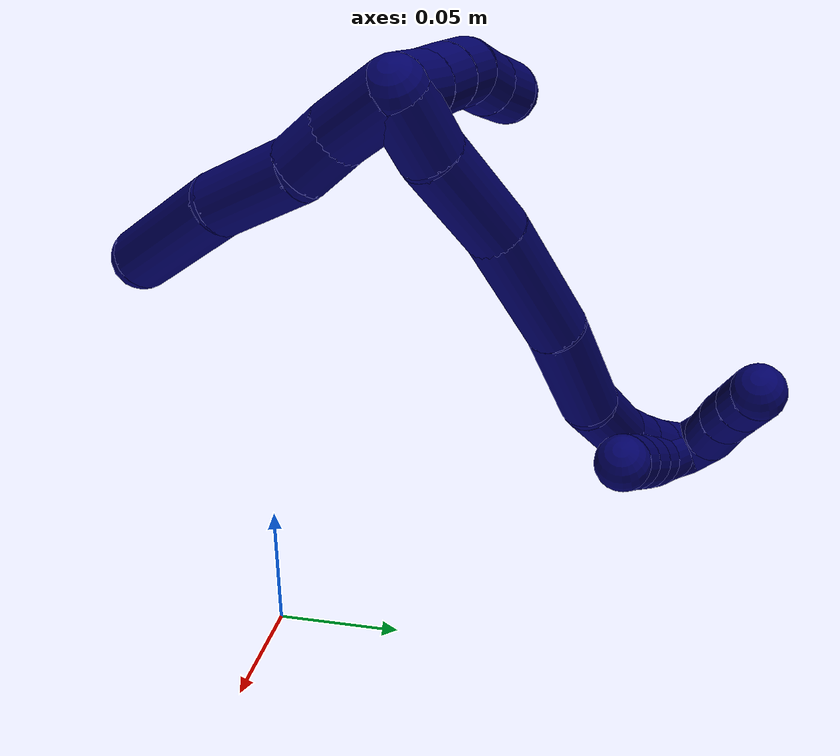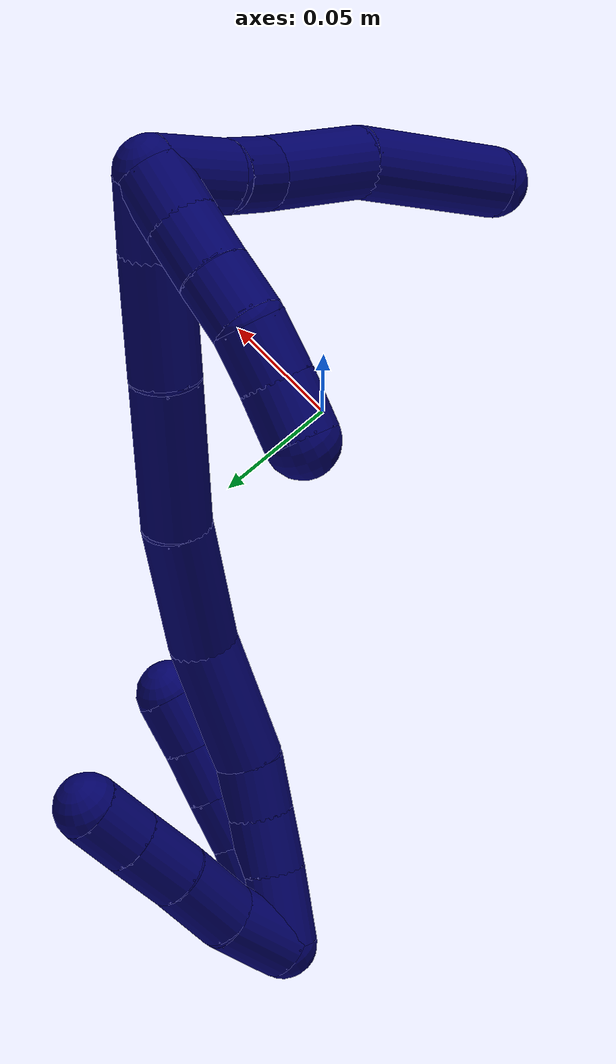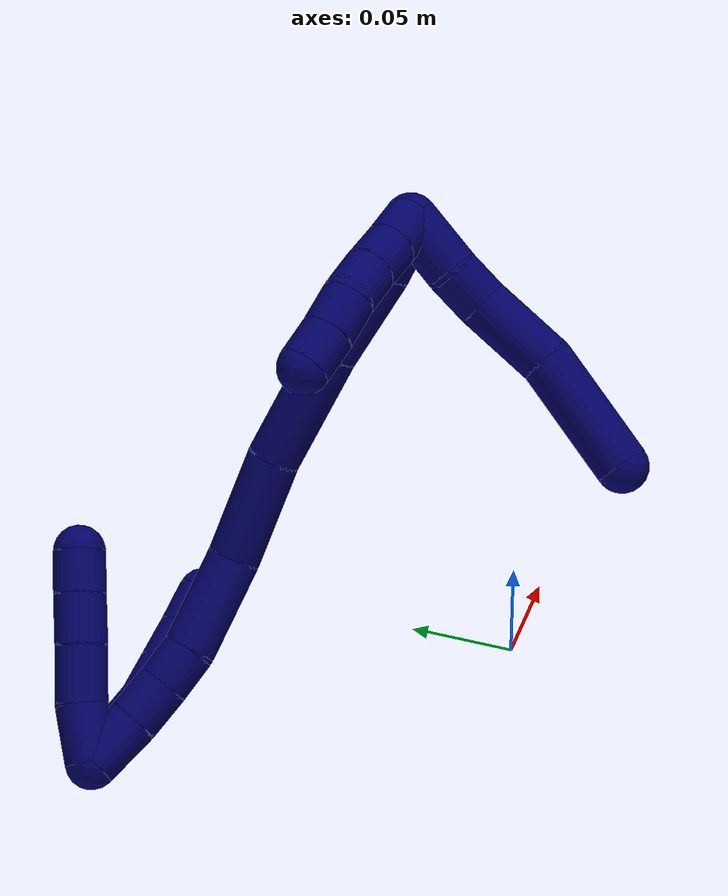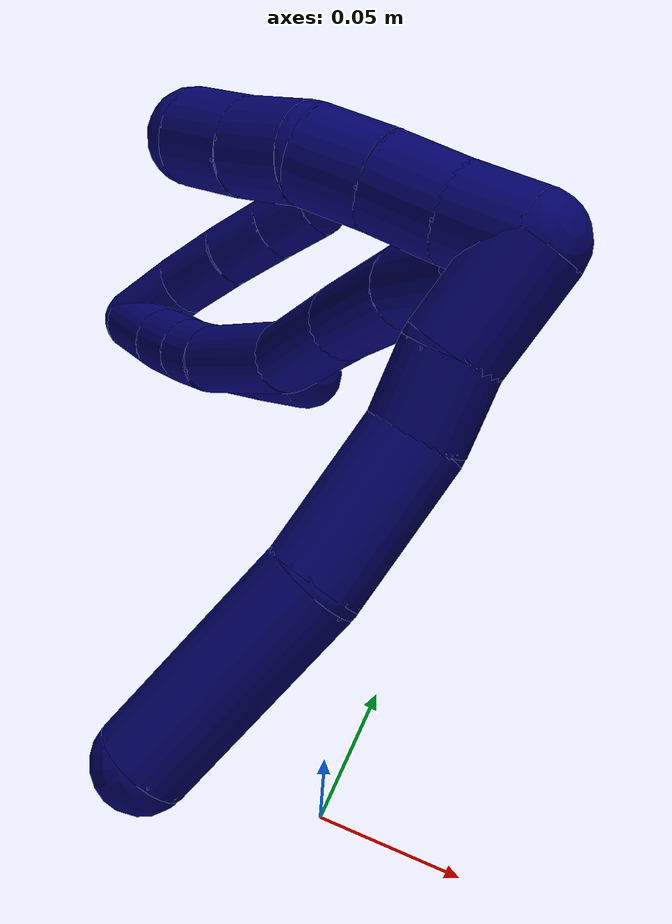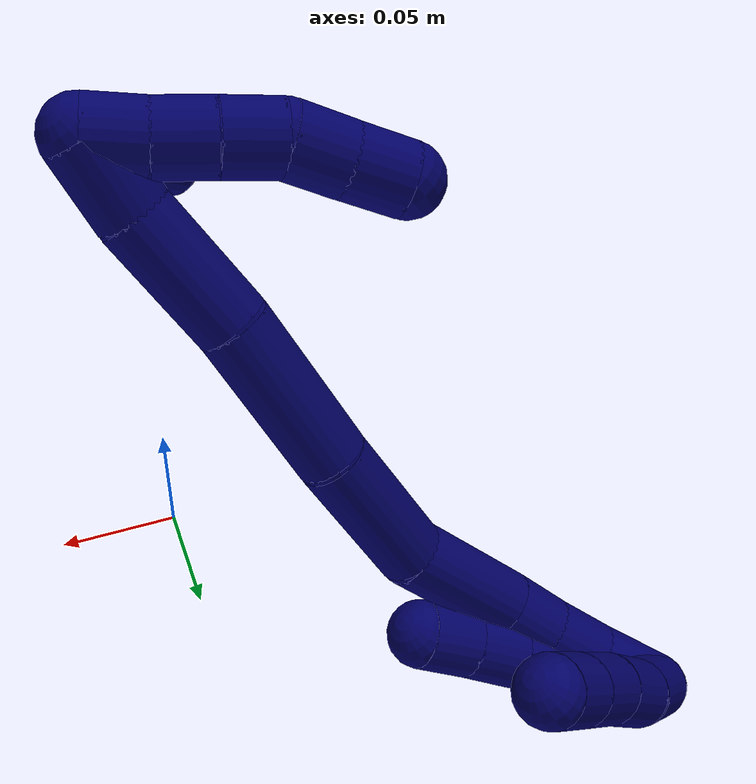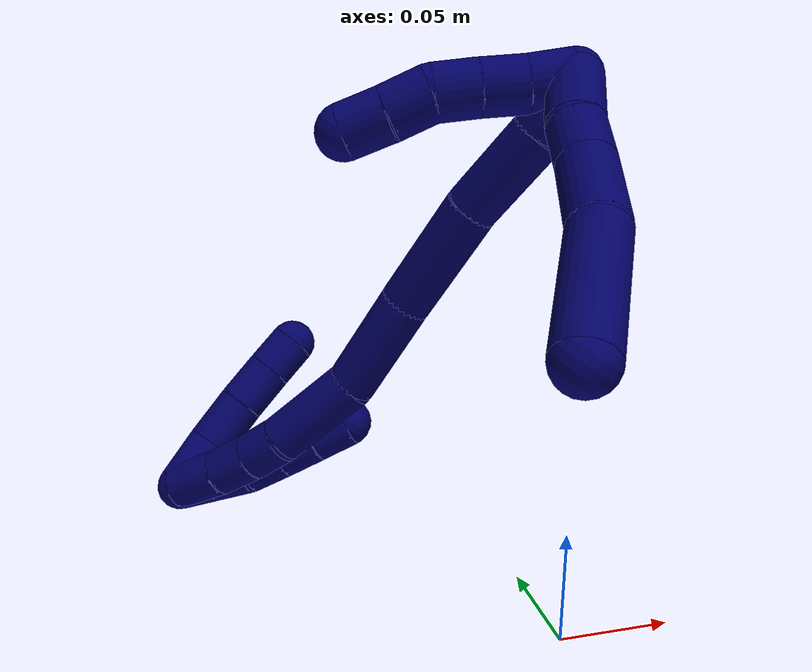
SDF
<sdf version="1.7">
 <world name="default">
  <model name="7">
   <static>0</static>
   <link name="7">
    <collision name="collision-cylinder-e_1_2_8">
     <pose>0.003595 -0.011137 -0.009468 2.27536 0.241184 0.512608</pose>
     <geometry><cylinder><radius>0.0125</radius><length>0.030106</length></cylinder></geometry>
     <surface>
      <friction><ode><mu>1.16</mu><mu2>1.16</mu2><slip1>0</slip1><slip2>0</slip2></ode></friction>
      <contact><ode><kp>1e+06</kp><kd>1</kd><max_vel>0</max_vel><min_depth>0.001</min_depth></ode></contact>
     </surface>
    </collision>
    <visual name="visual-cylinder-e_1_2_8">
     <pose>0.003595 -0.011137 -0.009468 2.27536 0.241184 0.512608</pose>
     <geometry><cylinder><radius>0.0125</radius><length>0.030106</length></cylinder></geometry>
     <material><ambient>0.003922 0 0.403922 1</ambient></material>
    </visual>
    <collision name="collision-cylinder-e_2_8_9">
     <pose>0.011805 -0.029249 -0.024823 2.27188 0.468044 0.948306</pose>
     <geometry><cylinder><radius>0.0125</radius><length>0.020456</length></cylinder></geometry>
     <surface>
      <friction><ode><mu>1.16</mu><mu2>1.16</mu2><slip1>0</slip1><slip2>0</slip2></ode></friction>
      <contact><ode><kp>1e+06</kp><kd>1</kd><max_vel>0</max_vel><min_depth>0.001</min_depth></ode></contact>
     </surface>
    </collision>
    <visual name="visual-cylinder-e_2_8_9">
     <pose>0.011805 -0.029249 -0.024823 2.27188 0.468044 0.948306</pose>
     <geometry><cylinder><radius>0.0125</radius><length>0.020456</length></cylinder></geometry>
     <material><ambient>0.003922 0 0.403922 1</ambient></material>
    </visual>
    <collision name="collision-cylinder-e_3_9_10">
     <pose>0.020928 -0.052975 -0.040621 2.10502 0.227632 0.395641</pose>
     <geometry><cylinder><radius>0.0125</radius><length>0.039957</length></cylinder></geometry>
     <surface>
      <friction><ode><mu>1.16</mu><mu2>1.16</mu2><slip1>0</slip1><slip2>0</slip2></ode></friction>
      <contact><ode><kp>1e+06</kp><kd>1</kd><max_vel>0</max_vel><min_depth>0.001</min_depth></ode></contact>
     </surface>
    </collision>
    <visual name="visual-cylinder-e_3_9_10">
     <pose>0.020928 -0.052975 -0.040621 2.10502 0.227632 0.395641</pose>
     <geometry><cylinder><radius>0.0125</radius><length>0.039957</length></cylinder></geometry>
     <material><ambient>0.003922 0 0.403922 1</ambient></material>
    </visual>
    <collision name="collision-cylinder-e_4_10_6">
     <pose>0.029332 -0.091696 -0.070195 2.30088 0.13135 0.292176</pose>
     <geometry><cylinder><radius>0.0125</radius><length>0.059481</length></cylinder></geometry>
     <surface>
      <friction><ode><mu>1.16</mu><mu2>1.16</mu2><slip1>0</slip1><slip2>0</slip2></ode></friction>
      <contact><ode><kp>1e+06</kp><kd>1</kd><max_vel>0</max_vel><min_depth>0.001</min_depth></ode></contact>
     </surface>
    </collision>
    <visual name="visual-cylinder-e_4_10_6">
     <pose>0.029332 -0.091696 -0.070195 2.30088 0.13135 0.292176</pose>
     <geometry><cylinder><radius>0.0125</radius><length>0.059481</length></cylinder></geometry>
     <material><ambient>0.003922 0 0.403922 1</ambient></material>
    </visual>
    <collision name="collision-cylinder-e_1_2_11">
     <pose>-0.007465 0.000268 -0.006648 -3.10129 -0.8428 3.05173</pose>
     <geometry><cylinder><radius>0.0125</radius><length>0.02</length></cylinder></geometry>
     <surface>
      <friction><ode><mu>1.16</mu><mu2>1.16</mu2><slip1>0</slip1><slip2>0</slip2></ode></friction>
      <contact><ode><kp>1e+06</kp><kd>1</kd><max_vel>0</max_vel><min_depth>0.001</min_depth></ode></contact>
     </surface>
    </collision>
    <visual name="visual-cylinder-e_1_2_11">
     <pose>-0.007465 0.000268 -0.006648 -3.10129 -0.8428 3.05173</pose>
     <geometry><cylinder><radius>0.0125</radius><length>0.02</length></cylinder></geometry>
     <material><ambient>0.003922 0 0.403922 1</ambient></material>
    </visual>
    <collision name="collision-cylinder-e_2_11_12">
     <pose>-0.022851 0.000683 -0.019399 -3.11758 -0.914271 3.09278</pose>
     <geometry><cylinder><radius>0.0125</radius><length>0.02</length></cylinder></geometry>
     <surface>
      <friction><ode><mu>1.16</mu><mu2>1.16</mu2><slip1>0</slip1><slip2>0</slip2></ode></friction>
      <contact><ode><kp>1e+06</kp><kd>1</kd><max_vel>0</max_vel><min_depth>0.001</min_depth></ode></contact>
     </surface>
    </collision>
    <visual name="visual-cylinder-e_2_11_12">
     <pose>-0.022851 0.000683 -0.019399 -3.11758 -0.914271 3.09278</pose>
     <geometry><cylinder><radius>0.0125</radius><length>0.02</length></cylinder></geometry>
     <material><ambient>0.003922 0 0.403922 1</ambient></material>
    </visual>
    <collision name="collision-cylinder-e_3_12_13">
     <pose>-0.038457 0.000727 -0.031899 3.12563 -0.876344 -3.10753</pose>
     <geometry><cylinder><radius>0.0125</radius><length>0.02</length></cylinder></geometry>
     <surface>
      <friction><ode><mu>1.16</mu><mu2>1.16</mu2><slip1>0</slip1><slip2>0</slip2></ode></friction>
      <contact><ode><kp>1e+06</kp><kd>1</kd><max_vel>0</max_vel><min_depth>0.001</min_depth></ode></contact>
     </surface>
    </collision>
    <visual name="visual-cylinder-e_3_12_13">
     <pose>-0.038457 0.000727 -0.031899 3.12563 -0.876344 -3.10753</pose>
     <geometry><cylinder><radius>0.0125</radius><length>0.02</length></cylinder></geometry>
     <material><ambient>0.003922 0 0.403922 1</ambient></material>
    </visual>
    <collision name="collision-cylinder-e_4_13_14">
     <pose>-0.051441 0.001381 -0.046744 -3.05233 -0.558648 2.83265</pose>
     <geometry><cylinder><radius>0.0125</radius><length>0.02</length></cylinder></geometry>
     <surface>
      <friction><ode><mu>1.16</mu><mu2>1.16</mu2><slip1>0</slip1><slip2>0</slip2></ode></friction>
      <contact><ode><kp>1e+06</kp><kd>1</kd><max_vel>0</max_vel><min_depth>0.001</min_depth></ode></contact>
     </surface>
    </collision>
    <visual name="visual-cylinder-e_4_13_14">
     <pose>-0.051441 0.001381 -0.046744 -3.05233 -0.558648 2.83265</pose>
     <geometry><cylinder><radius>0.0125</radius><length>0.02</length></cylinder></geometry>
     <material><ambient>0.003922 0 0.403922 1</ambient></material>
    </visual>
    <collision name="collision-cylinder-e_5_14_5">
     <pose>-0.062424 0.00341 -0.063319 -2.9862 -0.604398 2.65213</pose>
     <geometry><cylinder><radius>0.0125</radius><length>0.02</length></cylinder></geometry>
     <surface>
      <friction><ode><mu>1.16</mu><mu2>1.16</mu2><slip1>0</slip1><slip2>0</slip2></ode></friction>
      <contact><ode><kp>1e+06</kp><kd>1</kd><max_vel>0</max_vel><min_depth>0.001</min_depth></ode></contact>
     </surface>
    </collision>
    <visual name="visual-cylinder-e_5_14_5">
     <pose>-0.062424 0.00341 -0.063319 -2.9862 -0.604398 2.65213</pose>
     <geometry><cylinder><radius>0.0125</radius><length>0.02</length></cylinder></geometry>
     <material><ambient>0.003922 0 0.403922 1</ambient></material>
    </visual>
    <collision name="collision-cylinder-e_1_2_15">
     <pose>0.001085 0.004542 -0.013004 -2.80557 0.078625 -0.455746</pose>
     <geometry><cylinder><radius>0.0125</radius><length>0.027634</length></cylinder></geometry>
     <surface>
      <friction><ode><mu>1.16</mu><mu2>1.16</mu2><slip1>0</slip1><slip2>0</slip2></ode></friction>
      <contact><ode><kp>1e+06</kp><kd>1</kd><max_vel>0</max_vel><min_depth>0.001</min_depth></ode></contact>
     </surface>
    </collision>
    <visual name="visual-cylinder-e_1_2_15">
     <pose>0.001085 0.004542 -0.013004 -2.80557 0.078625 -0.455746</pose>
     <geometry><cylinder><radius>0.0125</radius><length>0.027634</length></cylinder></geometry>
     <material><ambient>0.003922 0 0.403922 1</ambient></material>
    </visual>
    <collision name="collision-cylinder-e_2_15_16">
     <pose>0.000324 0.01733 -0.047003 -2.76734 -0.081666 0.425039</pose>
     <geometry><cylinder><radius>0.0125</radius><length>0.045263</length></cylinder></geometry>
     <surface>
      <friction><ode><mu>1.16</mu><mu2>1.16</mu2><slip1>0</slip1><slip2>0</slip2></ode></friction>
      <contact><ode><kp>1e+06</kp><kd>1</kd><max_vel>0</max_vel><min_depth>0.001</min_depth></ode></contact>
     </surface>
    </collision>
    <visual name="visual-cylinder-e_2_15_16">
     <pose>0.000324 0.01733 -0.047003 -2.76734 -0.081666 0.425039</pose>
     <geometry><cylinder><radius>0.0125</radius><length>0.045263</length></cylinder></geometry>
     <material><ambient>0.003922 0 0.403922 1</ambient></material>
    </visual>
    <collision name="collision-cylinder-e_3_16_17">
     <pose>-0.000666 0.03509 -0.095145 -2.80451 0.029743 -0.174367</pose>
     <geometry><cylinder><radius>0.0125</radius><length>0.057558</length></cylinder></geometry>
     <surface>
      <friction><ode><mu>1.16</mu><mu2>1.16</mu2><slip1>0</slip1><slip2>0</slip2></ode></friction>
      <contact><ode><kp>1e+06</kp><kd>1</kd><max_vel>0</max_vel><min_depth>0.001</min_depth></ode></contact>
     </surface>
    </collision>
    <visual name="visual-cylinder-e_3_16_17">
     <pose>-0.000666 0.03509 -0.095145 -2.80451 0.029743 -0.174367</pose>
     <geometry><cylinder><radius>0.0125</radius><length>0.057558</length></cylinder></geometry>
     <material><ambient>0.003922 0 0.403922 1</ambient></material>
    </visual>
    <collision name="collision-cylinder-e_4_17_18">
     <pose>0.000968 0.050078 -0.147643 -2.92893 0.029986 -0.279138</pose>
     <geometry><cylinder><radius>0.0125</radius><length>0.051893</length></cylinder></geometry>
     <surface>
      <friction><ode><mu>1.16</mu><mu2>1.16</mu2><slip1>0</slip1><slip2>0</slip2></ode></friction>
      <contact><ode><kp>1e+06</kp><kd>1</kd><max_vel>0</max_vel><min_depth>0.001</min_depth></ode></contact>
     </surface>
    </collision>
    <visual name="visual-cylinder-e_4_17_18">
     <pose>0.000968 0.050078 -0.147643 -2.92893 0.029986 -0.279138</pose>
     <geometry><cylinder><radius>0.0125</radius><length>0.051893</length></cylinder></geometry>
     <material><ambient>0.003922 0 0.403922 1</ambient></material>
    </visual>
    <collision name="collision-cylinder-e_5_18_19">
     <pose>-0.004941 0.05889 -0.195686 -2.99552 -0.283655 2.19454</pose>
     <geometry><cylinder><radius>0.0125</radius><length>0.047782</length></cylinder></geometry>
     <surface>
      <friction><ode><mu>1.16</mu><mu2>1.16</mu2><slip1>0</slip1><slip2>0</slip2></ode></friction>
      <contact><ode><kp>1e+06</kp><kd>1</kd><max_vel>0</max_vel><min_depth>0.001</min_depth></ode></contact>
     </surface>
    </collision>
    <visual name="visual-cylinder-e_5_18_19">
     <pose>-0.004941 0.05889 -0.195686 -2.99552 -0.283655 2.19454</pose>
     <geometry><cylinder><radius>0.0125</radius><length>0.047782</length></cylinder></geometry>
     <material><ambient>0.003922 0 0.403922 1</ambient></material>
    </visual>
    <collision name="collision-cylinder-e_6_19_20">
     <pose>-0.015075 0.065376 -0.227371 -2.80492 -0.347211 1.60223</pose>
     <geometry><cylinder><radius>0.0125</radius><length>0.020265</length></cylinder></geometry>
     <surface>
      <friction><ode><mu>1.16</mu><mu2>1.16</mu2><slip1>0</slip1><slip2>0</slip2></ode></friction>
      <contact><ode><kp>1e+06</kp><kd>1</kd><max_vel>0</max_vel><min_depth>0.001</min_depth></ode></contact>
     </surface>
    </collision>
    <visual name="visual-cylinder-e_6_19_20">
     <pose>-0.015075 0.065376 -0.227371 -2.80492 -0.347211 1.60223</pose>
     <geometry><cylinder><radius>0.0125</radius><length>0.020265</length></cylinder></geometry>
     <material><ambient>0.003922 0 0.403922 1</ambient></material>
    </visual>
    <collision name="collision-cylinder-e_7_20_21">
     <pose>-0.022956 0.07205 -0.245805 -2.78409 -0.414398 1.72164</pose>
     <geometry><cylinder><radius>0.0125</radius><length>0.022021</length></cylinder></geometry>
     <surface>
      <friction><ode><mu>1.16</mu><mu2>1.16</mu2><slip1>0</slip1><slip2>0</slip2></ode></friction>
      <contact><ode><kp>1e+06</kp><kd>1</kd><max_vel>0</max_vel><min_depth>0.001</min_depth></ode></contact>
     </surface>
    </collision>
    <visual name="visual-cylinder-e_7_20_21">
     <pose>-0.022956 0.07205 -0.245805 -2.78409 -0.414398 1.72164</pose>
     <geometry><cylinder><radius>0.0125</radius><length>0.022021</length></cylinder></geometry>
     <material><ambient>0.003922 0 0.403922 1</ambient></material>
    </visual>
    <collision name="collision-cylinder-e_8_21_1">
     <pose>-0.033899 0.080605 -0.266317 -2.71525 -0.491566 1.71773</pose>
     <geometry><cylinder><radius>0.0125</radius><length>0.027584</length></cylinder></geometry>
     <surface>
      <friction><ode><mu>1.16</mu><mu2>1.16</mu2><slip1>0</slip1><slip2>0</slip2></ode></friction>
      <contact><ode><kp>1e+06</kp><kd>1</kd><max_vel>0</max_vel><min_depth>0.001</min_depth></ode></contact>
     </surface>
    </collision>
    <visual name="visual-cylinder-e_8_21_1">
     <pose>-0.033899 0.080605 -0.266317 -2.71525 -0.491566 1.71773</pose>
     <geometry><cylinder><radius>0.0125</radius><length>0.027584</length></cylinder></geometry>
     <material><ambient>0.003922 0 0.403922 1</ambient></material>
    </visual>
    <collision name="collision-cylinder-e_1_1_22">
     <pose>-0.03948 0.091831 -0.264853 -0.459202 0.066302 -0.015502</pose>
     <geometry><cylinder><radius>0.0125</radius><length>0.028027</length></cylinder></geometry>
     <surface>
      <friction><ode><mu>1.16</mu><mu2>1.16</mu2><slip1>0</slip1><slip2>0</slip2></ode></friction>
      <contact><ode><kp>1e+06</kp><kd>1</kd><max_vel>0</max_vel><min_depth>0.001</min_depth></ode></contact>
     </surface>
    </collision>
    <visual name="visual-cylinder-e_1_1_22">
     <pose>-0.03948 0.091831 -0.264853 -0.459202 0.066302 -0.015502</pose>
     <geometry><cylinder><radius>0.0125</radius><length>0.028027</length></cylinder></geometry>
     <material><ambient>0.003922 0 0.403922 1</ambient></material>
    </visual>
    <collision name="collision-cylinder-e_2_22_23">
     <pose>-0.037208 0.101836 -0.239243 -0.283377 0.098394 -0.014046</pose>
     <geometry><cylinder><radius>0.0125</radius><length>0.027371</length></cylinder></geometry>
     <surface>
      <friction><ode><mu>1.16</mu><mu2>1.16</mu2><slip1>0</slip1><slip2>0</slip2></ode></friction>
      <contact><ode><kp>1e+06</kp><kd>1</kd><max_vel>0</max_vel><min_depth>0.001</min_depth></ode></contact>
     </surface>
    </collision>
    <visual name="visual-cylinder-e_2_22_23">
     <pose>-0.037208 0.101836 -0.239243 -0.283377 0.098394 -0.014046</pose>
     <geometry><cylinder><radius>0.0125</radius><length>0.027371</length></cylinder></geometry>
     <material><ambient>0.003922 0 0.403922 1</ambient></material>
    </visual>
    <collision name="collision-cylinder-e_3_23_24">
     <pose>-0.034135 0.109611 -0.214949 -0.33989 0.144216 -0.024789</pose>
     <geometry><cylinder><radius>0.0125</radius><length>0.024047</length></cylinder></geometry>
     <surface>
      <friction><ode><mu>1.16</mu><mu2>1.16</mu2><slip1>0</slip1><slip2>0</slip2></ode></friction>
      <contact><ode><kp>1e+06</kp><kd>1</kd><max_vel>0</max_vel><min_depth>0.001</min_depth></ode></contact>
     </surface>
    </collision>
    <visual name="visual-cylinder-e_3_23_24">
     <pose>-0.034135 0.109611 -0.214949 -0.33989 0.144216 -0.024789</pose>
     <geometry><cylinder><radius>0.0125</radius><length>0.024047</length></cylinder></geometry>
     <material><ambient>0.003922 0 0.403922 1</ambient></material>
    </visual>
    <collision name="collision-cylinder-e_4_24_4">
     <pose>-0.030773 0.116881 -0.194137 -0.331577 0.159679 -0.026773</pose>
     <geometry><cylinder><radius>0.0125</radius><length>0.020555</length></cylinder></geometry>
     <surface>
      <friction><ode><mu>1.16</mu><mu2>1.16</mu2><slip1>0</slip1><slip2>0</slip2></ode></friction>
      <contact><ode><kp>1e+06</kp><kd>1</kd><max_vel>0</max_vel><min_depth>0.001</min_depth></ode></contact>
     </surface>
    </collision>
    <visual name="visual-cylinder-e_4_24_4">
     <pose>-0.030773 0.116881 -0.194137 -0.331577 0.159679 -0.026773</pose>
     <geometry><cylinder><radius>0.0125</radius><length>0.020555</length></cylinder></geometry>
     <material><ambient>0.003922 0 0.403922 1</ambient></material>
    </visual>
    <collision name="collision-cylinder-e_1_1_25">
     <pose>-0.034285 0.083345 -0.26982 0.293579 0.659046 0.101043</pose>
     <geometry><cylinder><radius>0.0125</radius><length>0.02</length></cylinder></geometry>
     <surface>
      <friction><ode><mu>1.16</mu><mu2>1.16</mu2><slip1>0</slip1><slip2>0</slip2></ode></friction>
      <contact><ode><kp>1e+06</kp><kd>1</kd><max_vel>0</max_vel><min_depth>0.001</min_depth></ode></contact>
     </surface>
    </collision>
    <visual name="visual-cylinder-e_1_1_25">
     <pose>-0.034285 0.083345 -0.26982 0.293579 0.659046 0.101043</pose>
     <geometry><cylinder><radius>0.0125</radius><length>0.02</length></cylinder></geometry>
     <material><ambient>0.003922 0 0.403922 1</ambient></material>
    </visual>
    <collision name="collision-cylinder-e_2_25_26">
     <pose>-0.021811 0.079271 -0.254737 0.233429 0.688054 0.083964</pose>
     <geometry><cylinder><radius>0.0125</radius><length>0.02</length></cylinder></geometry>
     <surface>
      <friction><ode><mu>1.16</mu><mu2>1.16</mu2><slip1>0</slip1><slip2>0</slip2></ode></friction>
      <contact><ode><kp>1e+06</kp><kd>1</kd><max_vel>0</max_vel><min_depth>0.001</min_depth></ode></contact>
     </surface>
    </collision>
    <visual name="visual-cylinder-e_2_25_26">
     <pose>-0.021811 0.079271 -0.254737 0.233429 0.688054 0.083964</pose>
     <geometry><cylinder><radius>0.0125</radius><length>0.02</length></cylinder></geometry>
     <material><ambient>0.003922 0 0.403922 1</ambient></material>
    </visual>
    <collision name="collision-cylinder-e_3_26_27">
     <pose>-0.010352 0.076803 -0.238652 0.079284 0.53626 0.021793</pose>
     <geometry><cylinder><radius>0.0125</radius><length>0.02</length></cylinder></geometry>
     <surface>
      <friction><ode><mu>1.16</mu><mu2>1.16</mu2><slip1>0</slip1><slip2>0</slip2></ode></friction>
      <contact><ode><kp>1e+06</kp><kd>1</kd><max_vel>0</max_vel><min_depth>0.001</min_depth></ode></contact>
     </surface>
    </collision>
    <visual name="visual-cylinder-e_3_26_27">
     <pose>-0.010352 0.076803 -0.238652 0.079284 0.53626 0.021793</pose>
     <geometry><cylinder><radius>0.0125</radius><length>0.02</length></cylinder></geometry>
     <material><ambient>0.003922 0 0.403922 1</ambient></material>
    </visual>
    <collision name="collision-cylinder-e_4_27_28">
     <pose>-0.000354 0.075313 -0.221397 0.092849 0.510706 0.024255</pose>
     <geometry><cylinder><radius>0.0125</radius><length>0.02</length></cylinder></geometry>
     <surface>
      <friction><ode><mu>1.16</mu><mu2>1.16</mu2><slip1>0</slip1><slip2>0</slip2></ode></friction>
      <contact><ode><kp>1e+06</kp><kd>1</kd><max_vel>0</max_vel><min_depth>0.001</min_depth></ode></contact>
     </surface>
    </collision>
    <visual name="visual-cylinder-e_4_27_28">
     <pose>-0.000354 0.075313 -0.221397 0.092849 0.510706 0.024255</pose>
     <geometry><cylinder><radius>0.0125</radius><length>0.02</length></cylinder></geometry>
     <material><ambient>0.003922 0 0.403922 1</ambient></material>
    </visual>
    <collision name="collision-cylinder-e_5_28_3">
     <pose>0.00946 0.074096 -0.204018 0.046966 0.51514 0.012374</pose>
     <geometry><cylinder><radius>0.0125</radius><length>0.02</length></cylinder></geometry>
     <surface>
      <friction><ode><mu>1.16</mu><mu2>1.16</mu2><slip1>0</slip1><slip2>0</slip2></ode></friction>
      <contact><ode><kp>1e+06</kp><kd>1</kd><max_vel>0</max_vel><min_depth>0.001</min_depth></ode></contact>
     </surface>
    </collision>
    <visual name="visual-cylinder-e_5_28_3">
     <pose>0.00946 0.074096 -0.204018 0.046966 0.51514 0.012374</pose>
     <geometry><cylinder><radius>0.0125</radius><length>0.02</length></cylinder></geometry>
     <material><ambient>0.003922 0 0.403922 1</ambient></material>
    </visual>
    <collision name="collision-sphere-3">
     <pose>0.014387 0.073687 -0.195325 0 -0 0</pose>
     <geometry><sphere><radius>0.0125</radius></sphere></geometry>
     <surface>
      <friction><ode><mu>1.16</mu><mu2>1.16</mu2><slip1>0</slip1><slip2>0</slip2></ode></friction>
      <contact><ode><kp>1e+06</kp><kd>1</kd><max_vel>0</max_vel><min_depth>0.001</min_depth></ode></contact>
     </surface>
    </collision>
    <visual name="visual-sphere-3">
     <pose>0.014387 0.073687 -0.195325 0 -0 0</pose>
     <geometry><sphere><radius>0.0125</radius></sphere></geometry>
     <material><ambient>0.003922 0 0.403922 1</ambient></material>
    </visual>
    <collision name="collision-sphere-28">
     <pose>0.004533 0.074505 -0.21271 0 -0 0</pose>
     <geometry><sphere><radius>0.0125</radius></sphere></geometry>
     <surface>
      <friction><ode><mu>1.16</mu><mu2>1.16</mu2><slip1>0</slip1><slip2>0</slip2></ode></friction>
      <contact><ode><kp>1e+06</kp><kd>1</kd><max_vel>0</max_vel><min_depth>0.001</min_depth></ode></contact>
     </surface>
    </collision>
    <visual name="visual-sphere-28">
     <pose>0.004533 0.074505 -0.21271 0 -0 0</pose>
     <geometry><sphere><radius>0.0125</radius></sphere></geometry>
     <material><ambient>0.003922 0 0.403922 1</ambient></material>
    </visual>
    <collision name="collision-sphere-27">
     <pose>-0.005242 0.076122 -0.230083 0 -0 0</pose>
     <geometry><sphere><radius>0.0125</radius></sphere></geometry>
     <surface>
      <friction><ode><mu>1.16</mu><mu2>1.16</mu2><slip1>0</slip1><slip2>0</slip2></ode></friction>
      <contact><ode><kp>1e+06</kp><kd>1</kd><max_vel>0</max_vel><min_depth>0.001</min_depth></ode></contact>
     </surface>
    </collision>
    <visual name="visual-sphere-27">
     <pose>-0.005242 0.076122 -0.230083 0 -0 0</pose>
     <geometry><sphere><radius>0.0125</radius></sphere></geometry>
     <material><ambient>0.003922 0 0.403922 1</ambient></material>
    </visual>
    <collision name="collision-sphere-26">
     <pose>-0.015461 0.077484 -0.247222 0 -0 0</pose>
     <geometry><sphere><radius>0.0125</radius></sphere></geometry>
     <surface>
      <friction><ode><mu>1.16</mu><mu2>1.16</mu2><slip1>0</slip1><slip2>0</slip2></ode></friction>
      <contact><ode><kp>1e+06</kp><kd>1</kd><max_vel>0</max_vel><min_depth>0.001</min_depth></ode></contact>
     </surface>
    </collision>
    <visual name="visual-sphere-26">
     <pose>-0.015461 0.077484 -0.247222 0 -0 0</pose>
     <geometry><sphere><radius>0.0125</radius></sphere></geometry>
     <material><ambient>0.003922 0 0.403922 1</ambient></material>
    </visual>
    <collision name="collision-sphere-25">
     <pose>-0.028162 0.081058 -0.262252 0 -0 0</pose>
     <geometry><sphere><radius>0.0125</radius></sphere></geometry>
     <surface>
      <friction><ode><mu>1.16</mu><mu2>1.16</mu2><slip1>0</slip1><slip2>0</slip2></ode></friction>
      <contact><ode><kp>1e+06</kp><kd>1</kd><max_vel>0</max_vel><min_depth>0.001</min_depth></ode></contact>
     </surface>
    </collision>
    <visual name="visual-sphere-25">
     <pose>-0.028162 0.081058 -0.262252 0 -0 0</pose>
     <geometry><sphere><radius>0.0125</radius></sphere></geometry>
     <material><ambient>0.003922 0 0.403922 1</ambient></material>
    </visual>
    <collision name="collision-sphere-4">
     <pose>-0.029139 0.120184 -0.184543 0 -0 0</pose>
     <geometry><sphere><radius>0.0125</radius></sphere></geometry>
     <surface>
      <friction><ode><mu>1.16</mu><mu2>1.16</mu2><slip1>0</slip1><slip2>0</slip2></ode></friction>
      <contact><ode><kp>1e+06</kp><kd>1</kd><max_vel>0</max_vel><min_depth>0.001</min_depth></ode></contact>
     </surface>
    </collision>
    <visual name="visual-sphere-4">
     <pose>-0.029139 0.120184 -0.184543 0 -0 0</pose>
     <geometry><sphere><radius>0.0125</radius></sphere></geometry>
     <material><ambient>0.003922 0 0.403922 1</ambient></material>
    </visual>
    <collision name="collision-sphere-24">
     <pose>-0.032407 0.113578 -0.203731 0 -0 0</pose>
     <geometry><sphere><radius>0.0125</radius></sphere></geometry>
     <surface>
      <friction><ode><mu>1.16</mu><mu2>1.16</mu2><slip1>0</slip1><slip2>0</slip2></ode></friction>
      <contact><ode><kp>1e+06</kp><kd>1</kd><max_vel>0</max_vel><min_depth>0.001</min_depth></ode></contact>
     </surface>
    </collision>
    <visual name="visual-sphere-24">
     <pose>-0.032407 0.113578 -0.203731 0 -0 0</pose>
     <geometry><sphere><radius>0.0125</radius></sphere></geometry>
     <material><ambient>0.003922 0 0.403922 1</ambient></material>
    </visual>
    <collision name="collision-sphere-23">
     <pose>-0.035863 0.105644 -0.226167 0 -0 0</pose>
     <geometry><sphere><radius>0.0125</radius></sphere></geometry>
     <surface>
      <friction><ode><mu>1.16</mu><mu2>1.16</mu2><slip1>0</slip1><slip2>0</slip2></ode></friction>
      <contact><ode><kp>1e+06</kp><kd>1</kd><max_vel>0</max_vel><min_depth>0.001</min_depth></ode></contact>
     </surface>
    </collision>
    <visual name="visual-sphere-23">
     <pose>-0.035863 0.105644 -0.226167 0 -0 0</pose>
     <geometry><sphere><radius>0.0125</radius></sphere></geometry>
     <material><ambient>0.003922 0 0.403922 1</ambient></material>
    </visual>
    <collision name="collision-sphere-22">
     <pose>-0.038552 0.098028 -0.252319 0 -0 0</pose>
     <geometry><sphere><radius>0.0125</radius></sphere></geometry>
     <surface>
      <friction><ode><mu>1.16</mu><mu2>1.16</mu2><slip1>0</slip1><slip2>0</slip2></ode></friction>
      <contact><ode><kp>1e+06</kp><kd>1</kd><max_vel>0</max_vel><min_depth>0.001</min_depth></ode></contact>
     </surface>
    </collision>
    <visual name="visual-sphere-22">
     <pose>-0.038552 0.098028 -0.252319 0 -0 0</pose>
     <geometry><sphere><radius>0.0125</radius></sphere></geometry>
     <material><ambient>0.003922 0 0.403922 1</ambient></material>
    </visual>
    <collision name="collision-sphere-1">
     <pose>-0.040409 0.085633 -0.277387 0 -0 0</pose>
     <geometry><sphere><radius>0.0125</radius></sphere></geometry>
     <surface>
      <friction><ode><mu>1.16</mu><mu2>1.16</mu2><slip1>0</slip1><slip2>0</slip2></ode></friction>
      <contact><ode><kp>1e+06</kp><kd>1</kd><max_vel>0</max_vel><min_depth>0.001</min_depth></ode></contact>
     </surface>
    </collision>
    <visual name="visual-sphere-1">
     <pose>-0.040409 0.085633 -0.277387 0 -0 0</pose>
     <geometry><sphere><radius>0.0125</radius></sphere></geometry>
     <material><ambient>0.003922 0 0.403922 1</ambient></material>
    </visual>
    <collision name="collision-sphere-21">
     <pose>-0.027389 0.075577 -0.255246 0 -0 0</pose>
     <geometry><sphere><radius>0.0125</radius></sphere></geometry>
     <surface>
      <friction><ode><mu>1.16</mu><mu2>1.16</mu2><slip1>0</slip1><slip2>0</slip2></ode></friction>
      <contact><ode><kp>1e+06</kp><kd>1</kd><max_vel>0</max_vel><min_depth>0.001</min_depth></ode></contact>
     </surface>
    </collision>
    <visual name="visual-sphere-21">
     <pose>-0.027389 0.075577 -0.255246 0 -0 0</pose>
     <geometry><sphere><radius>0.0125</radius></sphere></geometry>
     <material><ambient>0.003922 0 0.403922 1</ambient></material>
    </visual>
    <collision name="collision-sphere-11">
     <pose>-0.01493 0.000536 -0.013297 0 -0 0</pose>
     <geometry><sphere><radius>0.0125</radius></sphere></geometry>
     <surface>
      <friction><ode><mu>1.16</mu><mu2>1.16</mu2><slip1>0</slip1><slip2>0</slip2></ode></friction>
      <contact><ode><kp>1e+06</kp><kd>1</kd><max_vel>0</max_vel><min_depth>0.001</min_depth></ode></contact>
     </surface>
    </collision>
    <visual name="visual-sphere-11">
     <pose>-0.01493 0.000536 -0.013297 0 -0 0</pose>
     <geometry><sphere><radius>0.0125</radius></sphere></geometry>
     <material><ambient>0.003922 0 0.403922 1</ambient></material>
    </visual>
    <collision name="collision-sphere-6">
     <pose>0.033227 -0.113665 -0.089859 0 -0 0</pose>
     <geometry><sphere><radius>0.0125</radius></sphere></geometry>
     <surface>
      <friction><ode><mu>1.16</mu><mu2>1.16</mu2><slip1>0</slip1><slip2>0</slip2></ode></friction>
      <contact><ode><kp>1e+06</kp><kd>1</kd><max_vel>0</max_vel><min_depth>0.001</min_depth></ode></contact>
     </surface>
    </collision>
    <visual name="visual-sphere-6">
     <pose>0.033227 -0.113665 -0.089859 0 -0 0</pose>
     <geometry><sphere><radius>0.0125</radius></sphere></geometry>
     <material><ambient>0.003922 0 0.403922 1</ambient></material>
    </visual>
    <collision name="collision-sphere-10">
     <pose>0.025436 -0.069726 -0.050531 0 -0 0</pose>
     <geometry><sphere><radius>0.0125</radius></sphere></geometry>
     <surface>
      <friction><ode><mu>1.16</mu><mu2>1.16</mu2><slip1>0</slip1><slip2>0</slip2></ode></friction>
      <contact><ode><kp>1e+06</kp><kd>1</kd><max_vel>0</max_vel><min_depth>0.001</min_depth></ode></contact>
     </surface>
    </collision>
    <visual name="visual-sphere-10">
     <pose>0.025436 -0.069726 -0.050531 0 -0 0</pose>
     <geometry><sphere><radius>0.0125</radius></sphere></geometry>
     <material><ambient>0.003922 0 0.403922 1</ambient></material>
    </visual>
    <collision name="collision-sphere-9">
     <pose>0.016419 -0.036224 -0.030711 0 -0 0</pose>
     <geometry><sphere><radius>0.0125</radius></sphere></geometry>
     <surface>
      <friction><ode><mu>1.16</mu><mu2>1.16</mu2><slip1>0</slip1><slip2>0</slip2></ode></friction>
      <contact><ode><kp>1e+06</kp><kd>1</kd><max_vel>0</max_vel><min_depth>0.001</min_depth></ode></contact>
     </surface>
    </collision>
    <visual name="visual-sphere-9">
     <pose>0.016419 -0.036224 -0.030711 0 -0 0</pose>
     <geometry><sphere><radius>0.0125</radius></sphere></geometry>
     <material><ambient>0.003922 0 0.403922 1</ambient></material>
    </visual>
    <collision name="collision-sphere-2">
     <geometry><sphere><radius>0.0125</radius></sphere></geometry>
     <surface>
      <friction><ode><mu>1.16</mu><mu2>1.16</mu2><slip1>0</slip1><slip2>0</slip2></ode></friction>
      <contact><ode><kp>1e+06</kp><kd>1</kd><max_vel>0</max_vel><min_depth>0.001</min_depth></ode></contact>
     </surface>
    </collision>
    <visual name="visual-sphere-2">
     <geometry><sphere><radius>0.0125</radius></sphere></geometry>
     <material><ambient>0.003922 0 0.403922 1</ambient></material>
    </visual>
    <collision name="collision-sphere-19">
     <pose>-0.011627 0.062228 -0.218378 0 -0 0</pose>
     <geometry><sphere><radius>0.0125</radius></sphere></geometry>
     <surface>
      <friction><ode><mu>1.16</mu><mu2>1.16</mu2><slip1>0</slip1><slip2>0</slip2></ode></friction>
      <contact><ode><kp>1e+06</kp><kd>1</kd><max_vel>0</max_vel><min_depth>0.001</min_depth></ode></contact>
     </surface>
    </collision>
    <visual name="visual-sphere-19">
     <pose>-0.011627 0.062228 -0.218378 0 -0 0</pose>
     <geometry><sphere><radius>0.0125</radius></sphere></geometry>
     <material><ambient>0.003922 0 0.403922 1</ambient></material>
    </visual>
    <collision name="collision-sphere-8">
     <pose>0.007191 -0.022274 -0.018935 0 -0 0</pose>
     <geometry><sphere><radius>0.0125</radius></sphere></geometry>
     <surface>
      <friction><ode><mu>1.16</mu><mu2>1.16</mu2><slip1>0</slip1><slip2>0</slip2></ode></friction>
      <contact><ode><kp>1e+06</kp><kd>1</kd><max_vel>0</max_vel><min_depth>0.001</min_depth></ode></contact>
     </surface>
    </collision>
    <visual name="visual-sphere-8">
     <pose>0.007191 -0.022274 -0.018935 0 -0 0</pose>
     <geometry><sphere><radius>0.0125</radius></sphere></geometry>
     <material><ambient>0.003922 0 0.403922 1</ambient></material>
    </visual>
    <collision name="collision-sphere-12">
     <pose>-0.030773 0.000829 -0.025501 0 -0 0</pose>
     <geometry><sphere><radius>0.0125</radius></sphere></geometry>
     <surface>
      <friction><ode><mu>1.16</mu><mu2>1.16</mu2><slip1>0</slip1><slip2>0</slip2></ode></friction>
      <contact><ode><kp>1e+06</kp><kd>1</kd><max_vel>0</max_vel><min_depth>0.001</min_depth></ode></contact>
     </surface>
    </collision>
    <visual name="visual-sphere-12">
     <pose>-0.030773 0.000829 -0.025501 0 -0 0</pose>
     <geometry><sphere><radius>0.0125</radius></sphere></geometry>
     <material><ambient>0.003922 0 0.403922 1</ambient></material>
    </visual>
    <collision name="collision-sphere-13">
     <pose>-0.046141 0.000625 -0.038298 0 -0 0</pose>
     <geometry><sphere><radius>0.0125</radius></sphere></geometry>
     <surface>
      <friction><ode><mu>1.16</mu><mu2>1.16</mu2><slip1>0</slip1><slip2>0</slip2></ode></friction>
      <contact><ode><kp>1e+06</kp><kd>1</kd><max_vel>0</max_vel><min_depth>0.001</min_depth></ode></contact>
     </surface>
    </collision>
    <visual name="visual-sphere-13">
     <pose>-0.046141 0.000625 -0.038298 0 -0 0</pose>
     <geometry><sphere><radius>0.0125</radius></sphere></geometry>
     <material><ambient>0.003922 0 0.403922 1</ambient></material>
    </visual>
    <collision name="collision-sphere-14">
     <pose>-0.056741 0.002137 -0.05519 0 -0 0</pose>
     <geometry><sphere><radius>0.0125</radius></sphere></geometry>
     <surface>
      <friction><ode><mu>1.16</mu><mu2>1.16</mu2><slip1>0</slip1><slip2>0</slip2></ode></friction>
      <contact><ode><kp>1e+06</kp><kd>1</kd><max_vel>0</max_vel><min_depth>0.001</min_depth></ode></contact>
     </surface>
    </collision>
    <visual name="visual-sphere-14">
     <pose>-0.056741 0.002137 -0.05519 0 -0 0</pose>
     <geometry><sphere><radius>0.0125</radius></sphere></geometry>
     <material><ambient>0.003922 0 0.403922 1</ambient></material>
    </visual>
    <collision name="collision-sphere-5">
     <pose>-0.068107 0.004684 -0.071449 0 -0 0</pose>
     <geometry><sphere><radius>0.0125</radius></sphere></geometry>
     <surface>
      <friction><ode><mu>1.16</mu><mu2>1.16</mu2><slip1>0</slip1><slip2>0</slip2></ode></friction>
      <contact><ode><kp>1e+06</kp><kd>1</kd><max_vel>0</max_vel><min_depth>0.001</min_depth></ode></contact>
     </surface>
    </collision>
    <visual name="visual-sphere-5">
     <pose>-0.068107 0.004684 -0.071449 0 -0 0</pose>
     <geometry><sphere><radius>0.0125</radius></sphere></geometry>
     <material><ambient>0.003922 0 0.403922 1</ambient></material>
    </visual>
    <collision name="collision-sphere-15">
     <pose>0.002171 0.009084 -0.026008 0 -0 0</pose>
     <geometry><sphere><radius>0.0125</radius></sphere></geometry>
     <surface>
      <friction><ode><mu>1.16</mu><mu2>1.16</mu2><slip1>0</slip1><slip2>0</slip2></ode></friction>
      <contact><ode><kp>1e+06</kp><kd>1</kd><max_vel>0</max_vel><min_depth>0.001</min_depth></ode></contact>
     </surface>
    </collision>
    <visual name="visual-sphere-15">
     <pose>0.002171 0.009084 -0.026008 0 -0 0</pose>
     <geometry><sphere><radius>0.0125</radius></sphere></geometry>
     <material><ambient>0.003922 0 0.403922 1</ambient></material>
    </visual>
    <collision name="collision-sphere-16">
     <pose>-0.001522 0.025576 -0.067998 0 -0 0</pose>
     <geometry><sphere><radius>0.0125</radius></sphere></geometry>
     <surface>
      <friction><ode><mu>1.16</mu><mu2>1.16</mu2><slip1>0</slip1><slip2>0</slip2></ode></friction>
      <contact><ode><kp>1e+06</kp><kd>1</kd><max_vel>0</max_vel><min_depth>0.001</min_depth></ode></contact>
     </surface>
    </collision>
    <visual name="visual-sphere-16">
     <pose>-0.001522 0.025576 -0.067998 0 -0 0</pose>
     <geometry><sphere><radius>0.0125</radius></sphere></geometry>
     <material><ambient>0.003922 0 0.403922 1</ambient></material>
    </visual>
    <collision name="collision-sphere-17">
     <pose>0.00019 0.044604 -0.122293 0 -0 0</pose>
     <geometry><sphere><radius>0.0125</radius></sphere></geometry>
     <surface>
      <friction><ode><mu>1.16</mu><mu2>1.16</mu2><slip1>0</slip1><slip2>0</slip2></ode></friction>
      <contact><ode><kp>1e+06</kp><kd>1</kd><max_vel>0</max_vel><min_depth>0.001</min_depth></ode></contact>
     </surface>
    </collision>
    <visual name="visual-sphere-17">
     <pose>0.00019 0.044604 -0.122293 0 -0 0</pose>
     <geometry><sphere><radius>0.0125</radius></sphere></geometry>
     <material><ambient>0.003922 0 0.403922 1</ambient></material>
    </visual>
    <collision name="collision-sphere-18">
     <pose>0.001746 0.055551 -0.172994 0 -0 0</pose>
     <geometry><sphere><radius>0.0125</radius></sphere></geometry>
     <surface>
      <friction><ode><mu>1.16</mu><mu2>1.16</mu2><slip1>0</slip1><slip2>0</slip2></ode></friction>
      <contact><ode><kp>1e+06</kp><kd>1</kd><max_vel>0</max_vel><min_depth>0.001</min_depth></ode></contact>
     </surface>
    </collision>
    <visual name="visual-sphere-18">
     <pose>0.001746 0.055551 -0.172994 0 -0 0</pose>
     <geometry><sphere><radius>0.0125</radius></sphere></geometry>
     <material><ambient>0.003922 0 0.403922 1</ambient></material>
    </visual>
    <collision name="collision-sphere-20">
     <pose>-0.018523 0.068523 -0.236364 0 -0 0</pose>
     <geometry><sphere><radius>0.0125</radius></sphere></geometry>
     <surface>
      <friction><ode><mu>1.16</mu><mu2>1.16</mu2><slip1>0</slip1><slip2>0</slip2></ode></friction>
      <contact><ode><kp>1e+06</kp><kd>1</kd><max_vel>0</max_vel><min_depth>0.001</min_depth></ode></contact>
     </surface>
    </collision>
    <visual name="visual-sphere-20">
     <pose>-0.018523 0.068523 -0.236364 0 -0 0</pose>
     <geometry><sphere><radius>0.0125</radius></sphere></geometry>
     <material><ambient>0.003922 0 0.403922 1</ambient></material>
    </visual>
    <inertial>
     <pose>-0.00983 0.031037 -0.132262 0 -0 0</pose>
     <mass>0.75</mass>
     <inertia><ixx>9.6e-05</ixx><ixy>0</ixy><ixz>0</ixz><iyy>-4e-06</iyy><iyz>0</iyz><izz>-1.7e-05</izz></inertia>
    </inertial>
   </link>
   <pose>0.019016 0.05929 0.229104 -0.108289 0.584046 -0.245136</pose>
  </model>
 </world>
</sdf>
